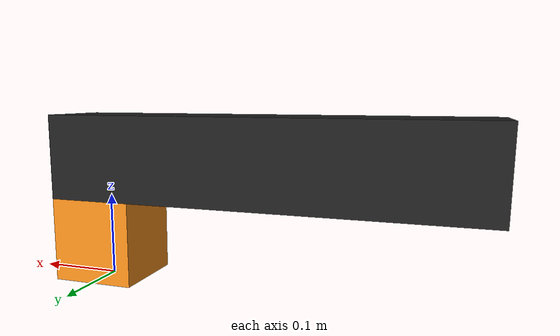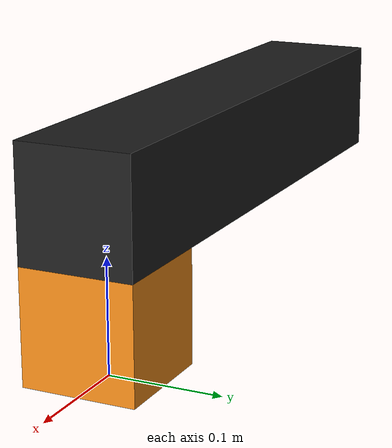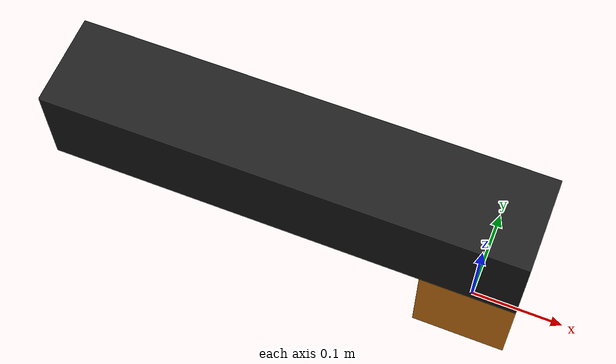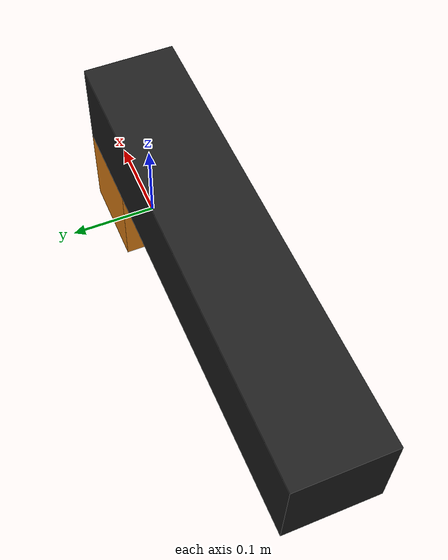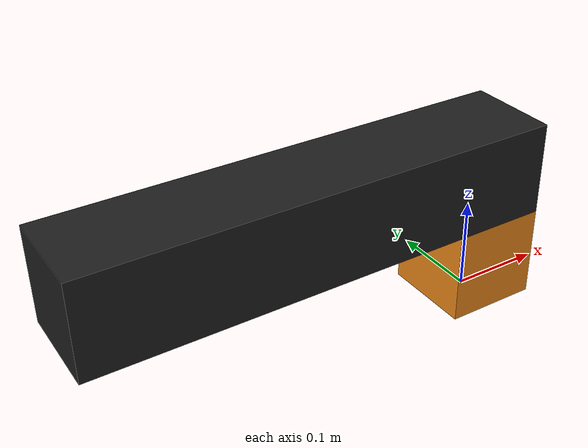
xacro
<?xml version="1.0"?>
<!-- Revolute-Revolute-Revolute Manipulator -->
<robot name="planarbot" xmlns:xacro="http://www.ros.org/wiki/xacro">

  <!-- Constants for robot dimensions -->
  <xacro:property name="PI" value="3.1415926535897931"/>
  <xacro:property name="width" value="0.1" /> <!-- Square dimensions (widthxwidth) of beams -->
  <xacro:property name="height1" value="0.1" /> <!-- Link 1 -->
  <xacro:property name="height2" value="0.5" /> <!-- Link 2 -->
  <xacro:property name="camera_link" value="0.05" /> <!-- Size of square 'camera' box -->
  <xacro:property name="axel_offset" value="0.05" /> <!-- Space btw top of beam and the each joint -->

  <!-- Import all Gazebo-customization elements, including Gazebo colors -->
  <xacro:include filename="$(find planarbot_description)/urdf/planarbot.gazebo" />
  <!-- Import Rviz colors -->
  <xacro:include filename="$(find planarbot_description)/urdf/materials.xacro" />

  <!-- Used for fixing robot to Gazebo 'base_link' -->
  <link name="world"/>

  <joint name="fixed" type="fixed">
    <parent link="world"/>
    <child link="link1"/>
  </joint>

  <!-- Base Link -->
  <link name="link1">
    <collision>
      <origin xyz="0 0 ${height1/2}" rpy="0 0 0"/>
      <geometry>
	<box size="${width} ${width} ${height1}"/>
      </geometry>
    </collision>

    <visual>
      <origin xyz="0 0 ${height1/2}" rpy="0 0 0"/>
      <geometry>
	<box size="${width} ${width} ${height1}"/>
      </geometry>
      <material name="orange"/>
    </visual>

    <inertial>
      <origin xyz="0 0 ${height1/2}" rpy="0 0 0"/>
      <mass value="1"/>
      <inertia
	  ixx="1.0" ixy="0.0" ixz="0.0"
	  iyy="1.0" iyz="0.0"
	  izz="1.0"/>
    </inertial>
  </link>

  <joint name="joint1" type="continuous">
    <parent link="link1"/>
    <child link="link2"/>
    <origin xyz="0 0 ${width}" rpy="0 0 0"/>
    <axis xyz="0 0 1"/>
    <dynamics damping="0.0" friction=".1"/>
    <limit effort="100" velocity="10.0"/>
  </joint>

  <!-- Second Link -->
  <link name="link2">
    <collision>
      <origin xyz="${-height2/2+axel_offset} 0 ${axel_offset}" rpy="0 0 0"/>
      <geometry>
	<box size="${height2} ${width} ${width}"/>
      </geometry>
    </collision>

    <visual>
      <origin xyz="${-height2/2+axel_offset} 0 ${axel_offset}" rpy="0 0 0"/>
      <geometry>
	<box size="${height2} ${width} ${width}"/>
      </geometry>
      <material name="black"/>
    </visual>

    <inertial>
      <origin xyz="${-height2/2+axel_offset} 0 ${axel_offset}" rpy="0 0 0"/>
      <mass value="1"/>
      <inertia
	  ixx="1.0" ixy="0.0" ixz="0.0"
	  iyy="1.0" iyz="0.0"
	  izz="1.0"/>
    </inertial>
  </link>

  <transmission name="tran1">
    <type>transmission_interface/SimpleTransmission</type>
    <joint name="joint1">
      <hardwareInterface>hardware_interface/EffortJointInterface</hardwareInterface>
    </joint>
    <actuator name="motor1">
      <hardwareInterface>hardware_interface/EffortJointInterface</hardwareInterface>
      <mechanicalReduction>1</mechanicalReduction>
    </actuator>
  </transmission>

</robot>
